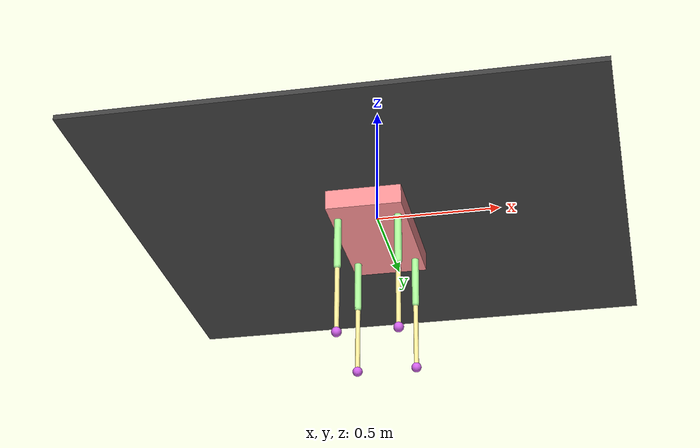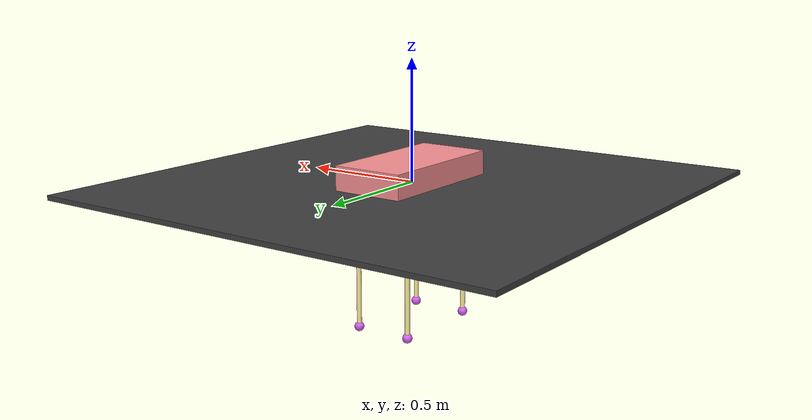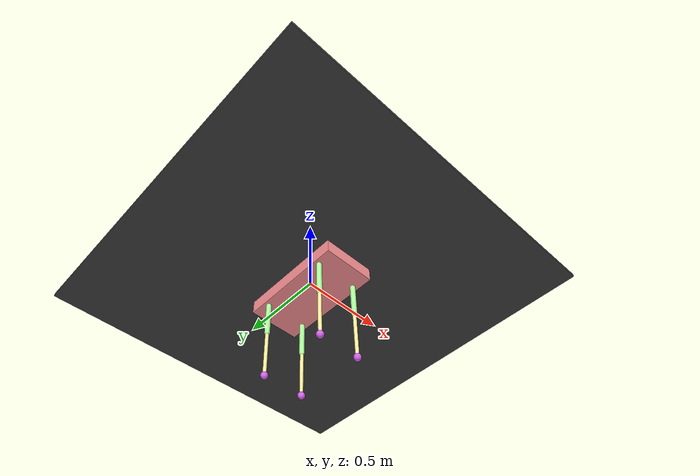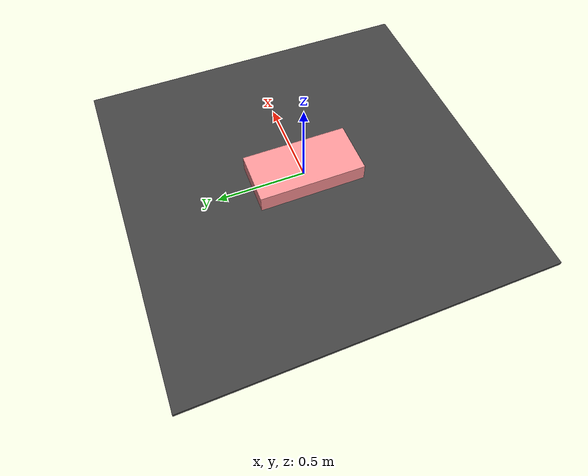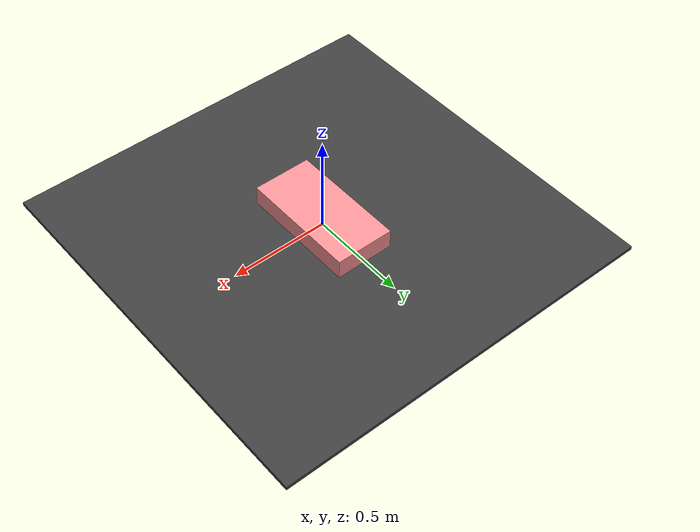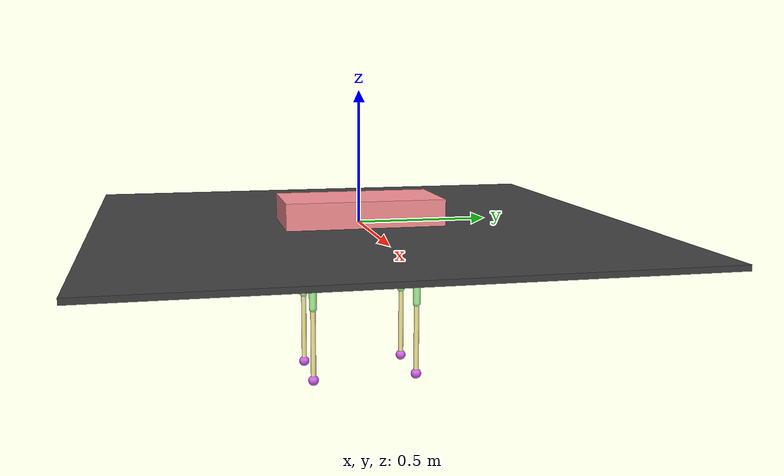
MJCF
<!-- dog in 3d world -->
<mujoco model="dog">
    <compiler angle="radian" coordinate="local" inertiafromgeom="auto"/>

    <option gravity="0 0 -9.8" timestep="0.001" collision="predefined" cone="elliptic" o_solref="0.002 1">
        <flag override="enable"/>
    </option>

    <visual>
    </visual>

    <asset>
        <texture type="skybox" builtin="gradient" width="100" height="100" rgb1="0.4 0.6 0.8" rgb2="0 0 0"/>
        <texture type="2d" name="plane" builtin="checker" rgb1="0.2 0.2 0.2" rgb2="0.3 0.3 0.3" width="100"
                 height="100"/>
        <material name="plane" reflectance="0.0" texture="plane" texrepeat="1 1" texuniform="true"/>
    </asset>

    <worldbody>
        <light mode="trackcom" pos="0 0 5" dir="0 0 -1"/>
        <light directional="true" pos="0 0 10" dir="0 0 -1" diffuse="0.2 0.2 0.2" specular="0 0 0"/>
        <!--geom name="floor" pos="0 0 0" size="50 50 50" type="plane" material="plane" condim="3" conaffinity="15"/-->
        <geom name="floor" pos="0 0 0" size="50 50 50" type="plane" rgba="1 1 1 0" condim="3" conaffinity="15"/>

        <body name="torso" pos="0 0 0">
            <camera name="track" pos="0 -3 0" zaxis="0 -1 0" mode="track"/>
            <geom type="box" size="0.15 0.3 0.1" rgba="0.992 0.576 0.588 1" mass="5" pos="0 0 0"/>
            <joint name="root_x" type="slide" axis="1 0 0" pos="0 0 0" limited="false" damping="0" armature="0"
                   stiffness="0"/>
            <joint name="root_y" type="slide" axis="0 1 0" pos="0 0 0" limited="false" damping="0" armature="0"
                   stiffness="0"/>
			<joint name="root_z" type="slide" axis="0 0 1" pos="0 0 0" limited="false" damping="0" armature="0"
                   stiffness="0"/>
            <joint name="root_rotationx" type="hinge" axis="1 0 0" pos="0 0 0" limited="false" damping="0" armature="0"
                   stiffness="0"/>
			<joint name="root_rotationy" type="hinge" axis="0 1 0" pos="0 0 0" limited="false" damping="0" armature="0"
                   stiffness="0"/>
			<joint name="root_rotationz" type="hinge" axis="0 0 1" pos="0 0 0" limited="false" damping="0" armature="0"
                   stiffness="0"/>
            <!-- left front leg -->
            <body name="left_front_1" pos="-0.12 0.2 0">
                <geom type="cylinder" fromto="-0.015 0 0 0.015 0 0" size="0.07" mass="0.2" rgba="0.686 1 0.616 1"/>
                <joint name="hip1_lf" type="hinge" axis="0 1 0" pos="0 0 0" limited="false" damping="0.1" stiffness="0"
                       armature="0.0001"/>
                <body name="left_front_2" pos="0 0 0">
                    <geom type="capsule" fromto="0 0 0 0 0 -0.3" size="0.015" mass="0.05" rgba="0.686 1 0.616 1"/>
                    <joint name="hip2_lf" type="hinge" axis="1 0 0" pos="0 0 0" limited="false" damping="0.1"
                           stiffness="0" armature="0.0001"/>
                    <body name="left_front_3" pos="0 0 -0.3">
                        <geom type="capsule" fromto="0 0 0 0 0 -0.28" size="0.01" mass="0.03" rgba="1 0.945 0.620 1"/>
                        <joint name="knee_lf" type="hinge" axis="1 0 0" pos="0 0 0" limited="false" damping="0.1"
                               stiffness="0" armature="0.0001"/>
                        <body name="left_front_4" pos="0 0 -0.28">
                            <geom type="sphere" pos="0 0 0" size="0.02" mass="0.01" rgba="0.839 0.388 0.937 1"
                                  friction="100 100 100" name="foot_lf"/>
                        </body>
                    </body>
                </body>
            </body>

            <!-- right front leg -->
            <body name="right_front_1" pos="0.12 0.2 0">
                <geom type="cylinder" fromto="-0.015 0 0 0.015 0 0" size="0.07" mass="0.2" rgba="0.686 1 0.616 1"/>
                <joint name="hip1_rf" type="hinge" axis="0 1 0" pos="0 0 0" limited="false" damping="0.1" stiffness="0"
                       armature="0.0001"/>
                <body name="right_front_2" pos="0 0 0">
                    <geom type="capsule" fromto="0 0 0 0 0 -0.3" size="0.015" mass="0.05" rgba="0.686 1 0.616 1"/>
                    <joint name="hip2_rf" type="hinge" axis="1 0 0" pos="0 0 0" limited="false" damping="0.1"
                           stiffness="0" armature="0.0001"/>
                    <body name="right_front_3" pos="0 0 -0.3">
                        <geom type="capsule" fromto="0 0 0 0 0 -0.28" size="0.01" mass="0.03" rgba="1 0.945 0.620 1"/>
                        <joint name="knee_rf" type="hinge" axis="1 0 0" pos="0 0 0" limited="false" damping="0.1"
                               stiffness="0" armature="0.0001"/>
                        <body name="right_front_4" pos="0 0 -0.28">
                            <geom type="sphere" pos="0 0 0" size="0.02" mass="0.01" rgba="0.839 0.388 0.937 1"
                                  friction="100 100 100" name="foot_rf"/>
                        </body>
                    </body>
                </body>
            </body>
            <!-- left back leg -->
            <body name="left_back_1" pos="-0.12 -0.2 0">
                <geom type="cylinder" fromto="-0.015 0 0 0.015 0 0" size="0.07" mass="0.2" rgba="0.686 1 0.616 1"/>
                <joint name="hip1_lb" type="hinge" axis="0 1 0" pos="0 0 0" limited="false" damping="0.1" stiffness="0"
                       armature="0.0001"/>
                <body name="left_back_2" pos="0 0 0">
                    <geom type="capsule" fromto="0 0 0 0 0 -0.3" size="0.015" mass="0.05" rgba="0.686 1 0.616 1"/>
                    <joint name="hip2_lb" type="hinge" axis="1 0 0" pos="0 0 0" limited="false" damping="0.1"
                           stiffness="0" armature="0.0001"/>
                    <body name="left_back_3" pos="0 0 -0.3">
                        <geom type="capsule" fromto="0 0 0 0 0 -0.28" size="0.01" mass="0.03" rgba="1 0.945 0.620 1"/>
                        <joint name="knee_lb" type="hinge" axis="1 0 0" pos="0 0 0" limited="false" damping="0.1"
                               stiffness="0" armature="0.0001"/>
                        <body name="left_back_4" pos="0 0 -0.28">
                            <geom type="sphere" pos="0 0 0" size="0.02" mass="0.01" rgba="0.839 0.388 0.937 1"
                                  friction="100 100 100" name="foot_lb"/>
                        </body>
                    </body>
                </body>
            </body>

            <!-- right back leg -->
            <body name="right_back_1" pos="0.12 -0.2 0">
                <geom type="cylinder" fromto="-0.015 0 0 0.015 0 0" size="0.07" mass="0.2" rgba="0.686 1 0.616 1"/>
                <joint name="hip1_rb" type="hinge" axis="0 1 0" pos="0 0 0" limited="false" damping="0.1" stiffness="0"
                       armature="0.0001"/>
                <body name="right_back_2" pos="0 0 0">
                    <geom type="capsule" fromto="0 0 0 0 0 -0.3" size="0.015" mass="0.05" rgba="0.686 1 0.616 1"/>
                    <joint name="hip2_rb" type="hinge" axis="1 0 0" pos="0 0 0" limited="false" damping="0.1"
                           stiffness="0" armature="0.0001"/>
                    <body name="right_back_3" pos="0 0 -0.3">
                        <geom type="capsule" fromto="0 0 0 0 0 -0.28" size="0.01" mass="0.03" rgba="1 0.945 0.620 1"/>
                        <joint name="knee_rb" type="hinge" axis="1 0 0" pos="0 0 0" limited="false" damping="0.1"
                               stiffness="0" armature="0.0001"/>
                        <body name="right_back_4" pos="0 0 -0.28">
                            <geom type="sphere" pos="0 0 0" size="0.02" mass="0.01" rgba="0.839 0.388 0.937 1"
                                  friction="100 100 100" name="foot_rb"/>
                        </body>
                    </body>
                </body>
            </body>
        </body>

        <body name="seesaw" pos="0 0 -0.01">
            <geom type="box" size="1 1 0.01" mass="1" material="plane" condim="3" conaffinity="15" name="seesaw"/>
            <joint name="rotation_y" type="hinge" axis="0 1 0" pos="0 0 0" limited="false" damping="0.2" armature="0"
                   stiffness="30"/>
            <joint name="rotation_x" type="hinge" axis="1 0 0" pos="0 0 0" limited="false" damping="0.2" armature="0"
                   stiffness="30"/>
        </body>

    </worldbody>

    <actuator>
        <motor joint="hip1_lf" gear="1" name="hip1_lf"/>
        <motor joint="hip2_lf" gear="1" name="hip2_lf"/>
        <motor joint="knee_lf" gear="1" name="knee_lf"/>
        <motor joint="hip1_rf" gear="1" name="hip1_rf"/>
        <motor joint="hip2_rf" gear="1" name="hip2_rf"/>
        <motor joint="knee_rf" gear="1" name="knee_rf"/>
        <motor joint="hip1_lb" gear="1" name="hip1_lb"/>
        <motor joint="hip2_lb" gear="1" name="hip2_lb"/>
        <motor joint="knee_lb" gear="1" name="knee_lb"/>
        <motor joint="hip1_rb" gear="1" name="hip1_rb"/>
        <motor joint="hip2_rb" gear="1" name="hip2_rb"/>
        <motor joint="knee_rb" gear="1" name="knee_rb"/>
        <motor joint="rotation_y" gear="1" name="seesaw_r1"/>
        <motor joint="rotation_x" gear="1" name="seesaw_r2"/>
    </actuator>

    <contact>
        <!--pair geom1="floor" geom2="foot_l" condim="3" friction="0.5 0.5 0.5" solref="0.002 1"/-->
        <!--pair geom1="floor" geom2="foot_r" condim="3" friction="0.5 0.5 0.5" solref="0.002 1"/-->
        <pair geom1="seesaw" geom2="foot_rf" condim="3" friction="0.5 0.5 0.5" solref="0.002 1"/>
        <pair geom1="seesaw" geom2="foot_lf" condim="3" friction="0.5 0.5 0.5" solref="0.002 1"/>
        <pair geom1="seesaw" geom2="foot_rb" condim="3" friction="0.5 0.5 0.5" solref="0.002 1"/>
        <pair geom1="seesaw" geom2="foot_lb" condim="3" friction="0.5 0.5 0.5" solref="0.002 1"/>
    </contact>

</mujoco>
